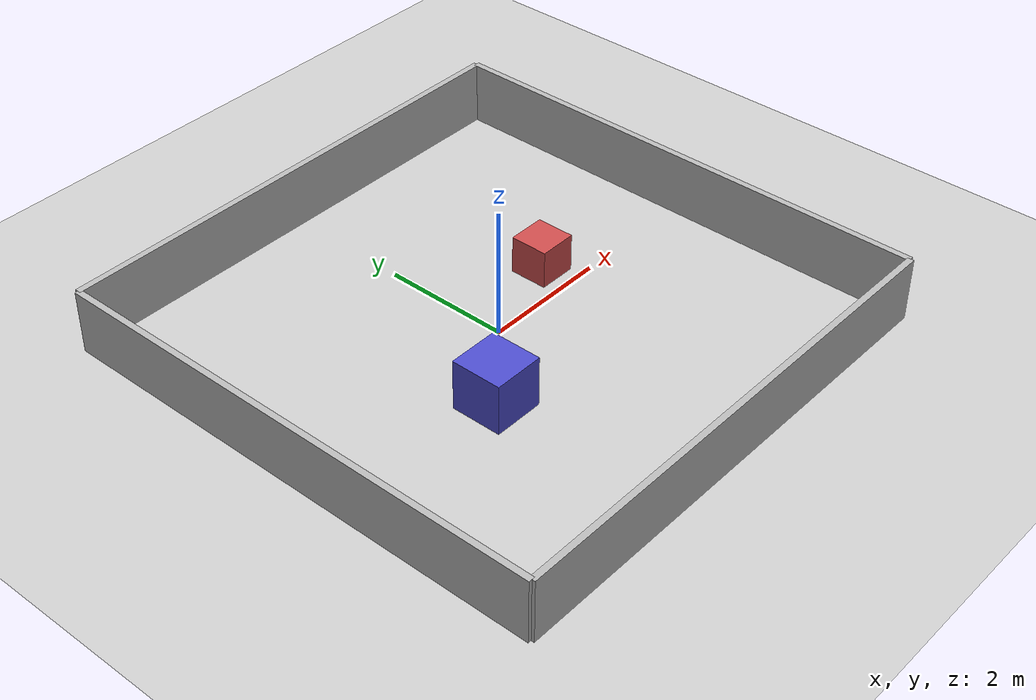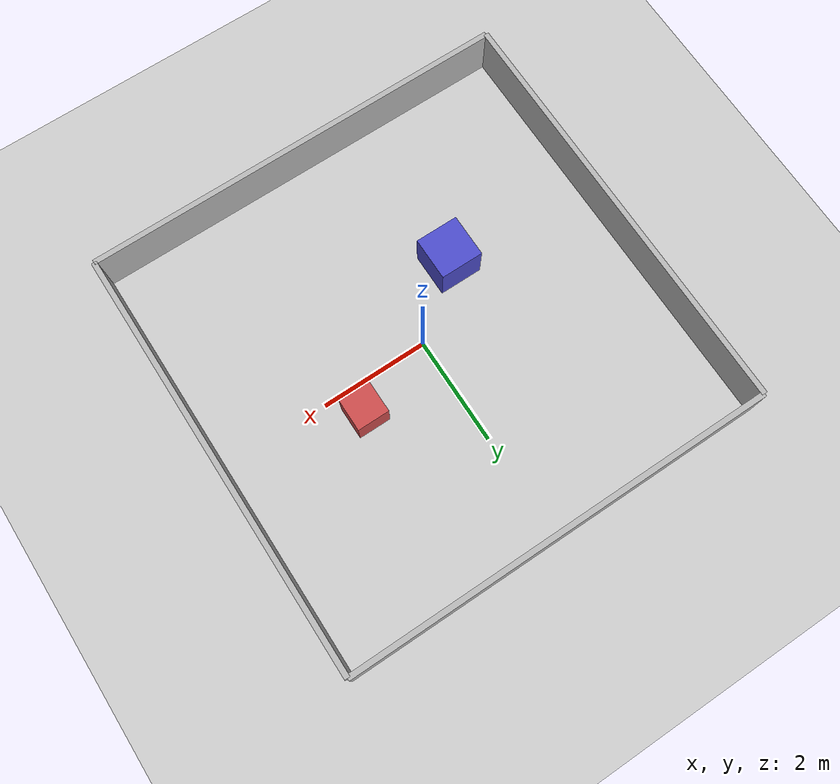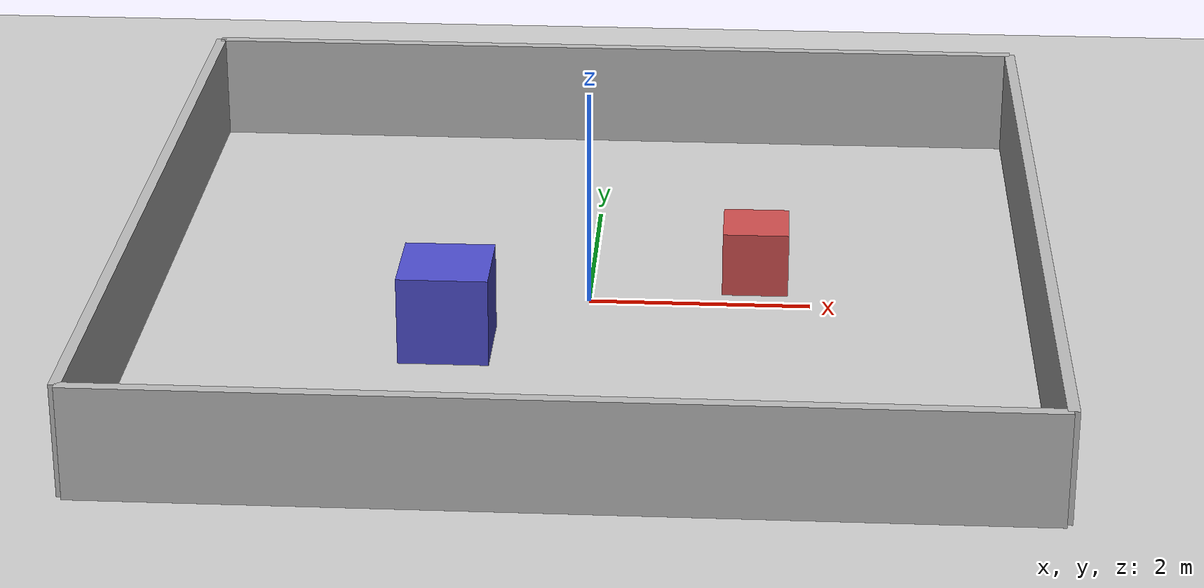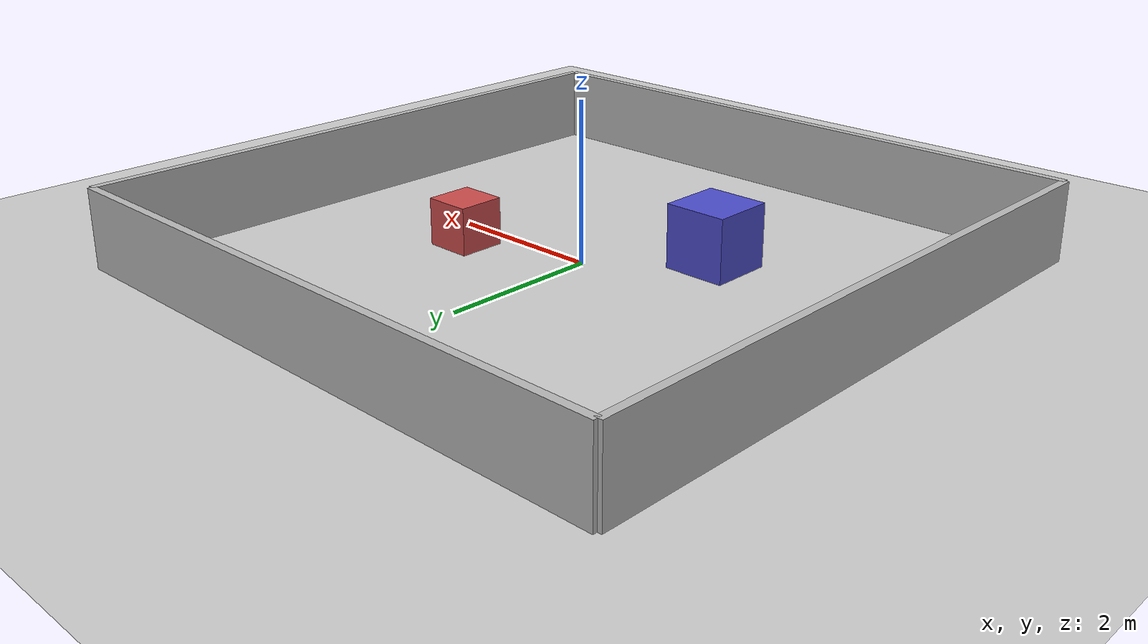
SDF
<?xml version="1.0" ?>
<sdf version="1.6">
  <world name="nexzino_navigation">
    <include>
      <uri>model://ground_plane</uri>
    </include>
    <include>
      <uri>model://sun</uri>
    </include>

    <physics type="ode">
      <real_time_update_rate>1000.0</real_time_update_rate>
      <max_step_size>0.001</max_step_size>
      <real_time_factor>1.0</real_time_factor>
    </physics>

    <scene>
      <ambient>0.4 0.4 0.4 1</ambient>
      <background>0.7 0.7 0.7 1</background>
      <shadows>false</shadows>
    </scene>

    <gui fullscreen="0">
      <camera name="user_camera">
        <pose>4 -4 3 0 0.4 2.35</pose>
      </camera>
    </gui>

    <model name="wall_north">
      <static>true</static>
      <pose>0 4 0.5 0 0 0</pose>
      <link name="link">
        <collision name="collision">
          <geometry>
            <box>
              <size>8 0.1 1</size>
            </box>
          </geometry>
        </collision>
        <visual name="visual">
          <geometry>
            <box>
              <size>8 0.1 1</size>
            </box>
          </geometry>
        </visual>
      </link>
    </model>

    <model name="wall_south">
      <static>true</static>
      <pose>0 -4 0.5 0 0 0</pose>
      <link name="link">
        <collision name="collision">
          <geometry>
            <box>
              <size>8 0.1 1</size>
            </box>
          </geometry>
        </collision>
        <visual name="visual">
          <geometry>
            <box>
              <size>8 0.1 1</size>
            </box>
          </geometry>
        </visual>
      </link>
    </model>

    <model name="wall_east">
      <static>true</static>
      <pose>4 0 0.5 0 0 1.5708</pose>
      <link name="link">
        <collision name="collision">
          <geometry>
            <box>
              <size>8 0.1 1</size>
            </box>
          </geometry>
        </collision>
        <visual name="visual">
          <geometry>
            <box>
              <size>8 0.1 1</size>
            </box>
          </geometry>
        </visual>
      </link>
    </model>

    <model name="wall_west">
      <static>true</static>
      <pose>-4 0 0.5 0 0 1.5708</pose>
      <link name="link">
        <collision name="collision">
          <geometry>
            <box>
              <size>8 0.1 1</size>
            </box>
          </geometry>
        </collision>
        <visual name="visual">
          <geometry>
            <box>
              <size>8 0.1 1</size>
            </box>
          </geometry>
        </visual>
      </link>
    </model>

    <model name="obstacle_box_1">
      <static>true</static>
      <pose>1.5 0.5 0.3 0 0 0</pose>
      <link name="link">
        <collision name="collision">
          <geometry>
            <box>
              <size>0.6 0.6 0.6</size>
            </box>
          </geometry>
        </collision>
        <visual name="visual">
          <geometry>
            <box>
              <size>0.6 0.6 0.6</size>
            </box>
          </geometry>
          <material>
            <ambient>0.8 0.3 0.3 1</ambient>
            <diffuse>0.8 0.3 0.3 1</diffuse>
          </material>
        </visual>
      </link>
    </model>

    <model name="obstacle_box_2">
      <static>true</static>
      <pose>-1.2 -1.0 0.4 0 0 0</pose>
      <link name="link">
        <collision name="collision">
          <geometry>
            <box>
              <size>0.8 0.8 0.8</size>
            </box>
          </geometry>
        </collision>
        <visual name="visual">
          <geometry>
            <box>
              <size>0.8 0.8 0.8</size>
            </box>
          </geometry>
          <material>
            <ambient>0.3 0.3 0.8 1</ambient>
            <diffuse>0.3 0.3 0.8 1</diffuse>
          </material>
        </visual>
      </link>
    </model>
  </world>
</sdf>
